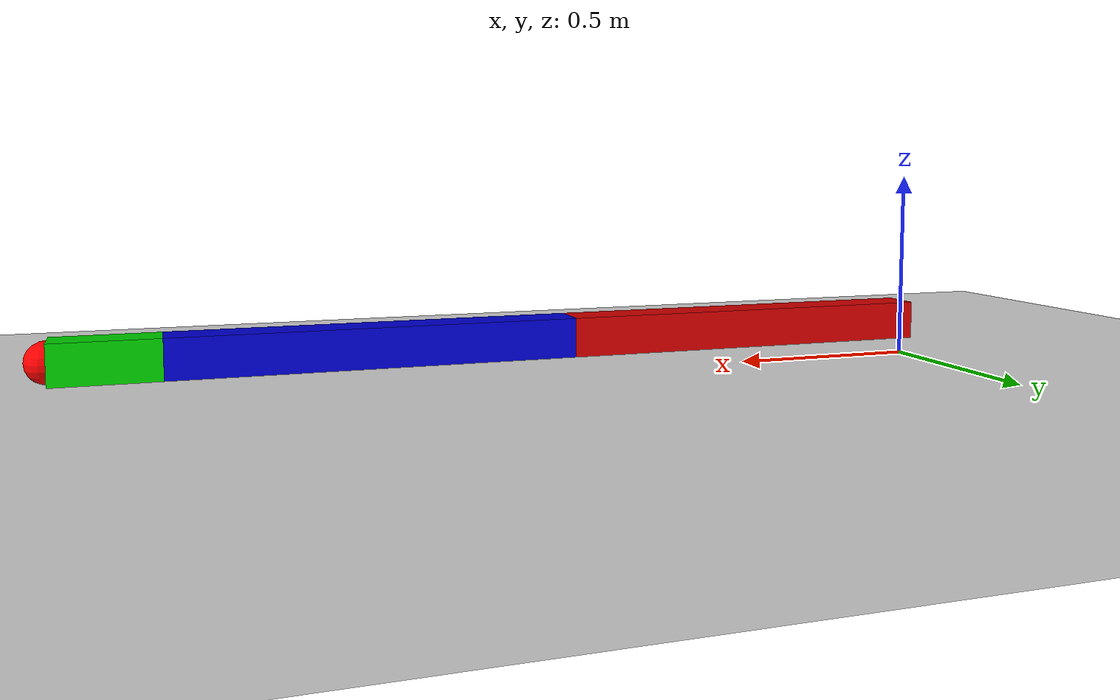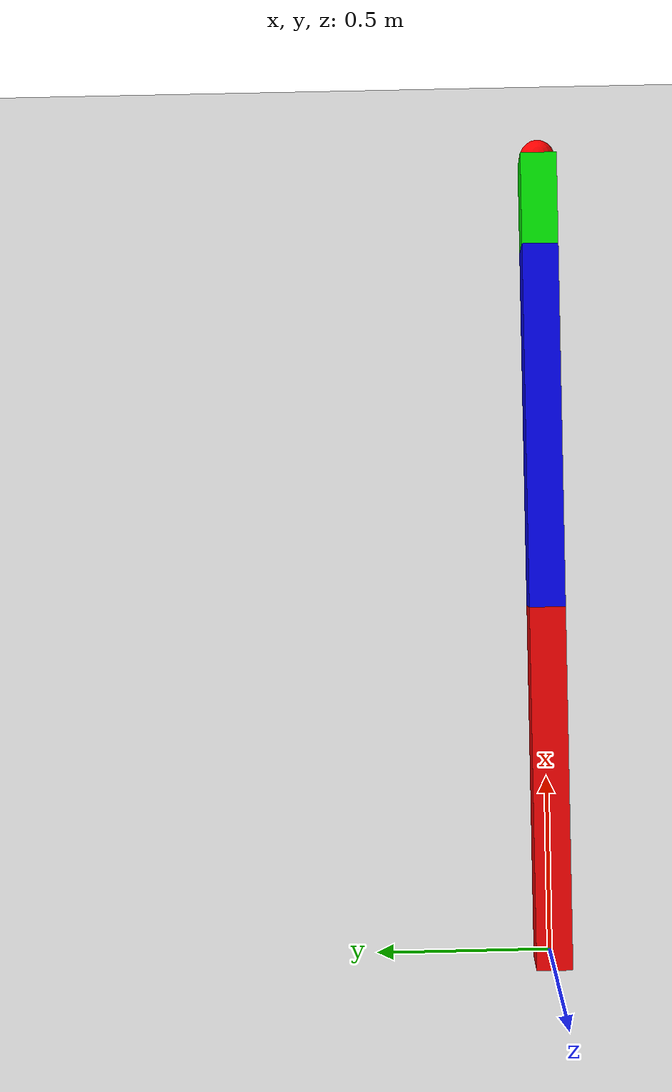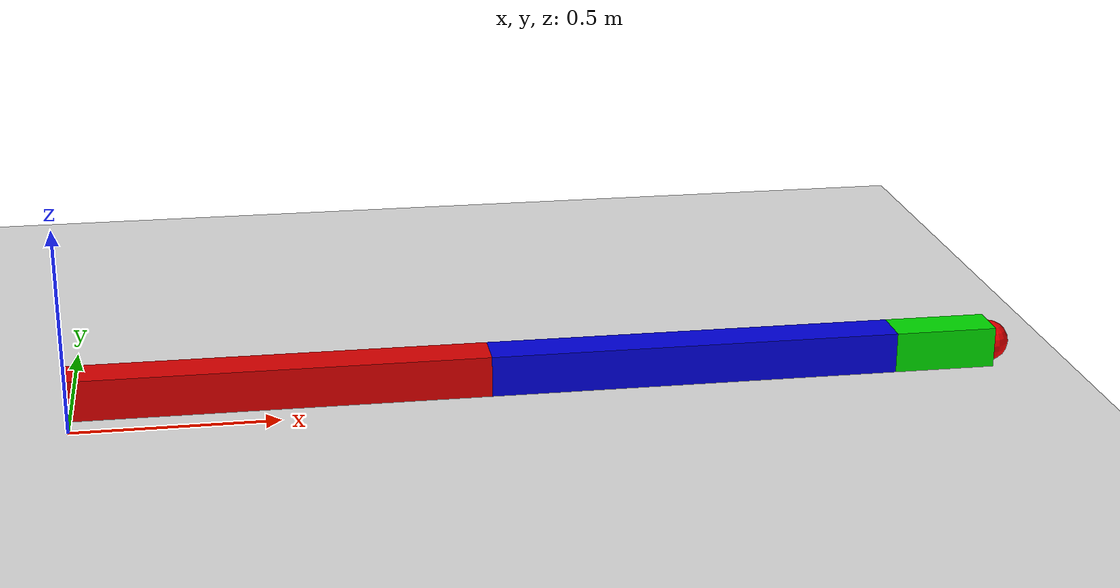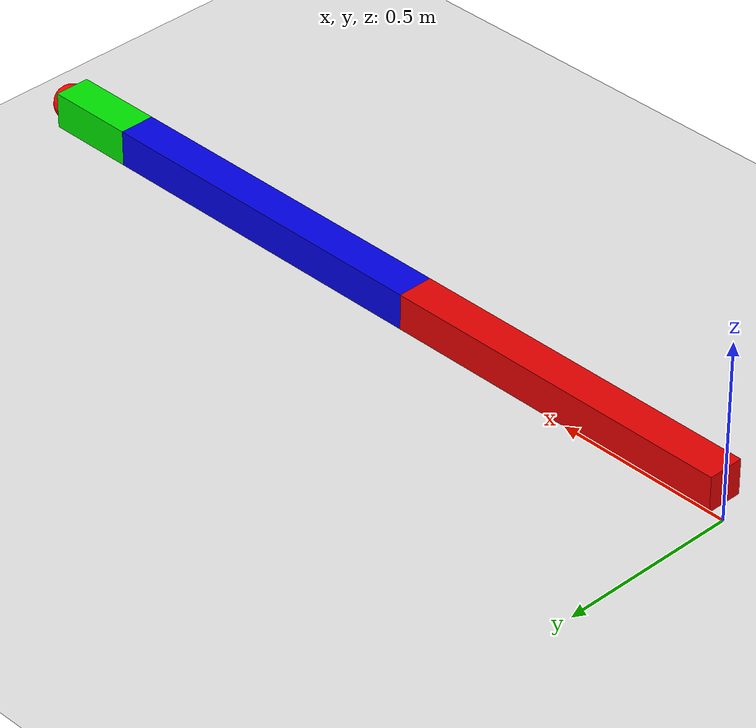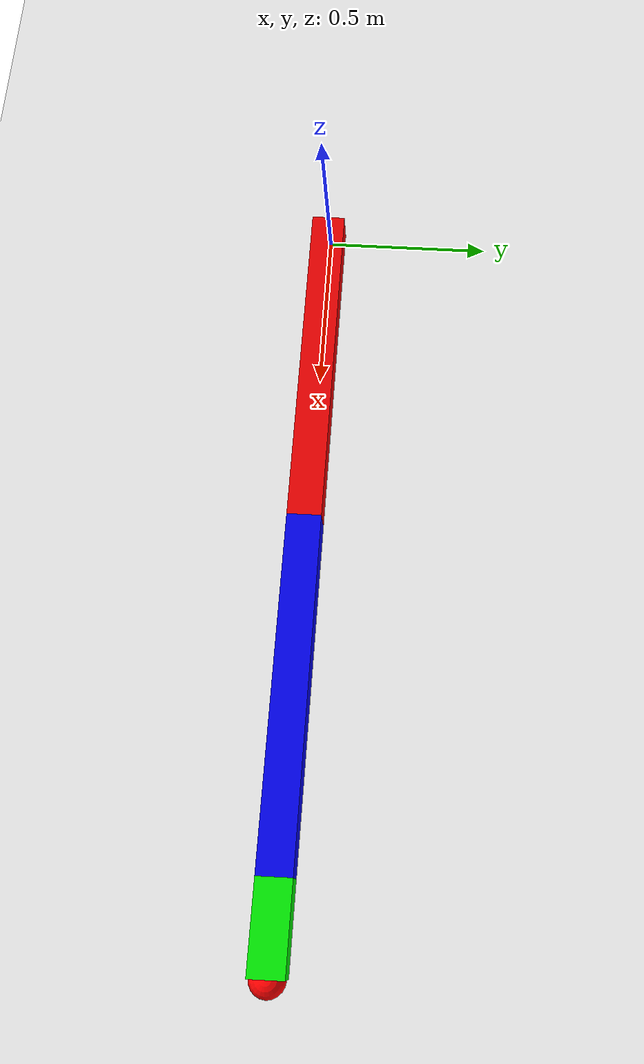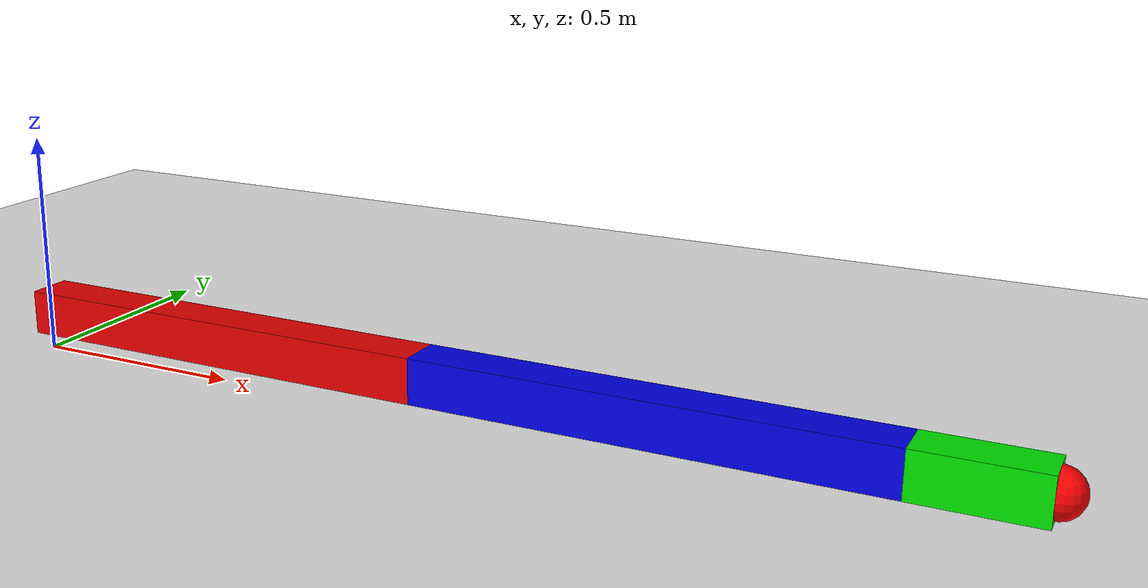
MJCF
<mujoco>
    <option gravity="0 -9.81 0"/>
    <worldbody>
        <light diffuse=".5 .5 .5" pos="0 0 100" dir="0 0 -1"/>
        <geom type="plane" size="2.5 2.5 0.1" rgba=".9 .9 .9 1"/>
        <body name="body1" pos="0 0 0.1">
            <inertial mass="1" pos="0.5 0 0" fullinertia="1 1 0.1 0 0 0"/>
            <joint name="joint1" type="hinge" axis="0 0 1" pos="0 0 0"/>
            <geom type="box" size=".5 .05 .05" pos="0.5 0 0" rgba=".9 0 0 1"/>
            <body name="body2" pos="1.0 0 0">
                <inertial mass="1" pos="0.5 0 0" fullinertia="1 1 0.1 0 0 0"/>
                <joint name="joint2" type="hinge" axis="0 0 1" pos="0 0 0"/>
                <geom type="box" size=".5 .05 .05" pos="0.5 0 0" rgba="0 0 .9 1"/>
                <body name="body3" pos="1.0 0 0">
                    <inertial mass="0.2" pos="0.125 0 0" fullinertia="0.1 0.1 0.02 0 0 0"/>
                    <joint name="joint3" type="hinge" axis="0 0 1" pos="0 0 0"/>
                    <geom type="box" size=".125 .05 .05" pos="0.125 0 0" rgba="0 .9 0 1"/>
                    <site name="tip" pos="0.25 0 0" size="0.05" rgba="1 0 0 1"/>
                </body>
            </body>
        </body>
    </worldbody>
    <keyframe>
        <key name="home" qpos="0.5 -0.4 1.3"/>
    </keyframe>
</mujoco>
